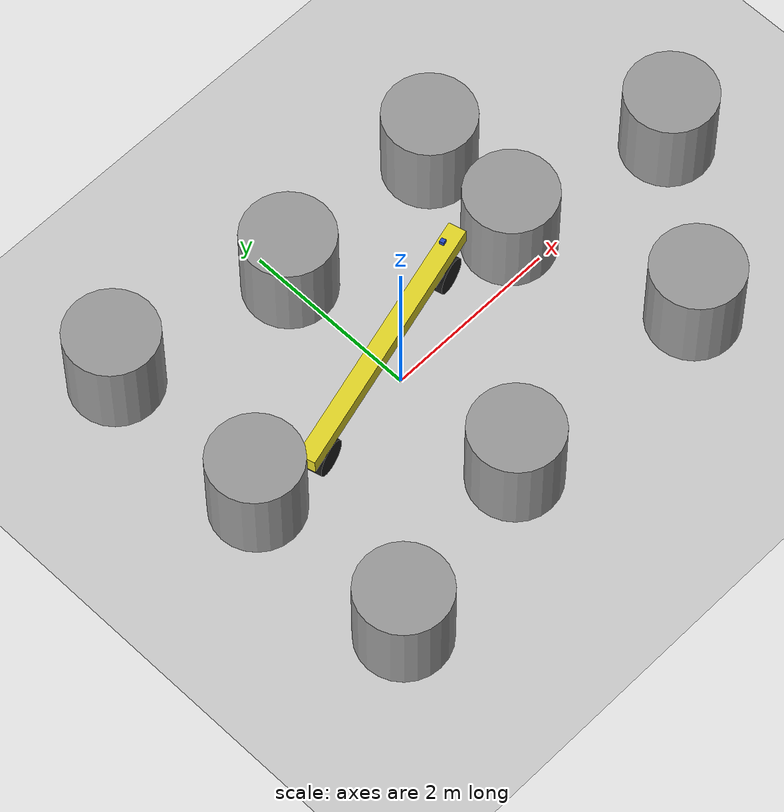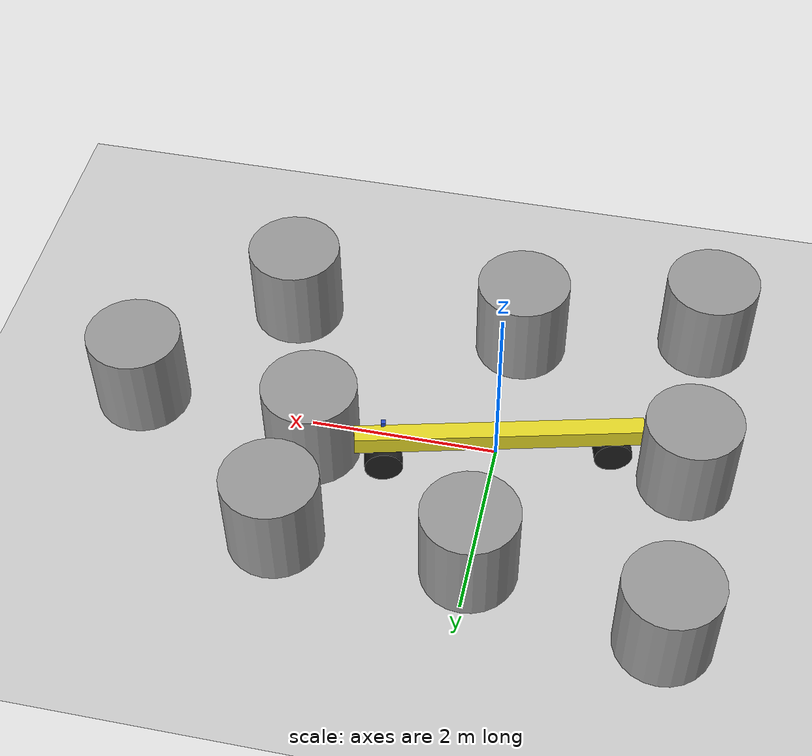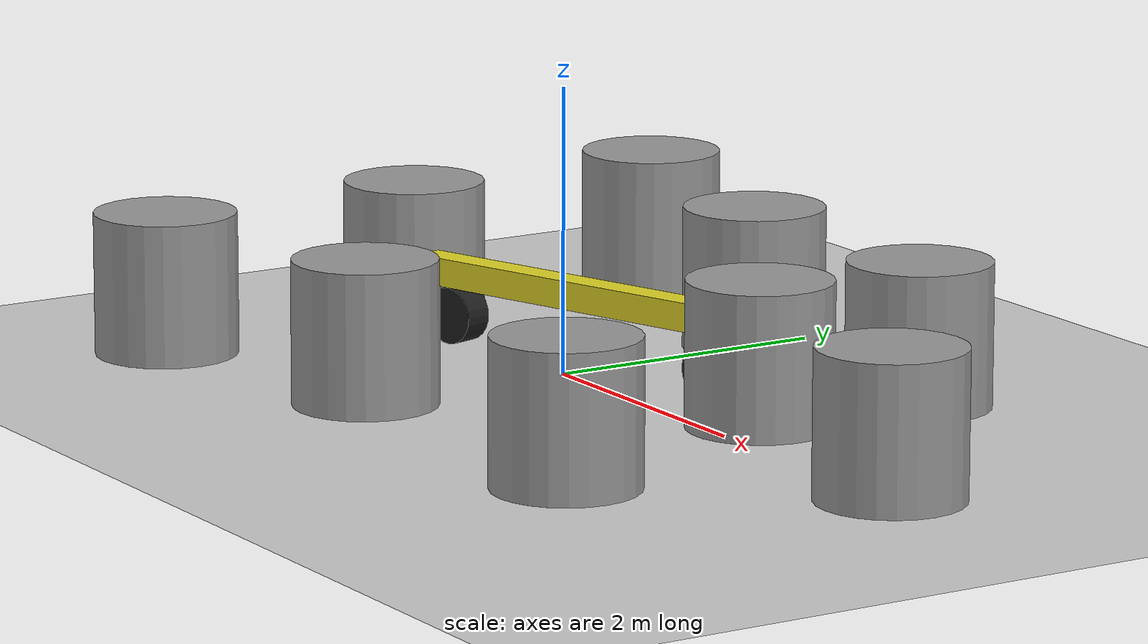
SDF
<sdf version="1.6">
 <world name="default">
  <light name="sun" type="directional">
   <pose>0 0 10 0 -0 0</pose>
   <diffuse>0.8 0.8 0.8 1</diffuse>
   <specular>0.2 0.2 0.2 1</specular>
   <attenuation>
    <range>1000</range>
    <constant>0.9</constant>
    <linear>0.01</linear>
    <quadratic>0.001</quadratic>
   </attenuation>
   <direction>-0.5 0.1 -0.9</direction>
  </light>
  <model name="ground_plane">
   <static>1</static>
   <link name="link">
    <collision name="collision">
     <geometry><plane><normal>0 0 1</normal><size>100 100</size></plane></geometry>
     <surface><friction><ode><mu>100</mu><mu2>50</mu2></ode></friction></surface>
    </collision>
    <visual name="visual">
     <cast_shadows>0</cast_shadows>
     <geometry><plane><normal>0 0 1</normal><size>100 100</size></plane></geometry>
     <material>
      <script><uri>file://media/materials/scripts/gazebo.material</uri><name>Gazebo/Grey</name></script>
     </material>
    </visual>
    <velocity_decay><linear>0</linear><angular>0</angular></velocity_decay>
   </link>
  </model>
  <physics name="default_physics" default="0" type="ode">
   <max_step_size>0.001</max_step_size>
   <real_time_factor>1</real_time_factor>
   <real_time_update_rate>1000</real_time_update_rate>
  </physics>
  <scene><ambient>0.4 0.4 0.4 1</ambient><background>0.7 0.7 0.7 1</background><shadows>1</shadows></scene>
  <spherical_coordinates>
   <surface_model>EARTH_WGS84</surface_model>
   <latitude_deg>0</latitude_deg>
   <longitude_deg>0</longitude_deg>
   <elevation>0</elevation>
   <heading_deg>0</heading_deg>
  </spherical_coordinates>
  <model name="unit_cylinder_1">
   <pose>-0 1.56701 0.499998 1e-06 -1e-06 0</pose>
   <link name="link">
    <inertial>
     <mass>1</mass>
     <inertia><ixx>1</ixx><ixy>0</ixy><ixz>0</ixz><iyy>1</iyy><iyz>0</iyz><izz>1</izz></inertia>
    </inertial>
    <collision name="collision">
     <geometry><cylinder><radius>0.5</radius><length>1</length></cylinder></geometry>
    </collision>
    <visual name="visual">
     <geometry><cylinder><radius>0.5</radius><length>1</length></cylinder></geometry>
     <material>
      <script><uri>file://media/materials/scripts/gazebo.material</uri><name>Gazebo/Grey</name></script>
     </material>
    </visual>
    <velocity_decay><linear>0</linear><angular>0</angular></velocity_decay>
   </link>
   <static>0</static>
  </model>
  <model name="unit_cylinder_2">
   <pose>2 1.55881 0.499992 -1e-06 1e-06 0</pose>
   <link name="link">
    <inertial>
     <mass>1</mass>
     <inertia><ixx>1</ixx><ixy>0</ixy><ixz>0</ixz><iyy>1</iyy><iyz>0</iyz><izz>1</izz></inertia>
    </inertial>
    <collision name="collision">
     <geometry><cylinder><radius>0.5</radius><length>1</length></cylinder></geometry>
    </collision>
    <visual name="visual">
     <geometry><cylinder><radius>0.5</radius><length>1</length></cylinder></geometry>
     <material>
      <script><uri>file://media/materials/scripts/gazebo.material</uri><name>Gazebo/Grey</name></script>
     </material>
    </visual>
    <velocity_decay><linear>0</linear><angular>0</angular></velocity_decay>
   </link>
   <static>0</static>
  </model>
  <model name="unit_cylinder_3">
   <pose>-0 -1.56452 0.499998 1e-06 -1e-06 0</pose>
   <link name="link">
    <inertial>
     <mass>1</mass>
     <inertia><ixx>1</ixx><ixy>0</ixy><ixz>0</ixz><iyy>1</iyy><iyz>0</iyz><izz>1</izz></inertia>
    </inertial>
    <collision name="collision">
     <geometry><cylinder><radius>0.5</radius><length>1</length></cylinder></geometry>
    </collision>
    <visual name="visual">
     <geometry><cylinder><radius>0.5</radius><length>1</length></cylinder></geometry>
     <material>
      <script><uri>file://media/materials/scripts/gazebo.material</uri><name>Gazebo/Grey</name></script>
     </material>
    </visual>
    <velocity_decay><linear>0</linear><angular>0</angular></velocity_decay>
   </link>
   <static>0</static>
  </model>
  <model name="unit_cylinder_4">
   <pose>2.56824 -1.58381 0.499992 -1e-06 1e-06 0</pose>
   <link name="link">
    <inertial>
     <mass>1</mass>
     <inertia><ixx>1</ixx><ixy>0</ixy><ixz>0</ixz><iyy>1</iyy><iyz>0</iyz><izz>1</izz></inertia>
    </inertial>
    <collision name="collision">
     <geometry><cylinder><radius>0.5</radius><length>1</length></cylinder></geometry>
    </collision>
    <visual name="visual">
     <geometry><cylinder><radius>0.5</radius><length>1</length></cylinder></geometry>
     <material>
      <script><uri>file://media/materials/scripts/gazebo.material</uri><name>Gazebo/Grey</name></script>
     </material>
    </visual>
    <velocity_decay><linear>0</linear><angular>0</angular></velocity_decay>
   </link>
   <static>0</static>
  </model>
  <model name="unit_cylinder_5">
   <pose>-2 0 0.499998 1e-06 -1e-06 0</pose>
   <link name="link">
    <inertial>
     <mass>1</mass>
     <inertia><ixx>1</ixx><ixy>0</ixy><ixz>0</ixz><iyy>1</iyy><iyz>0</iyz><izz>1</izz></inertia>
    </inertial>
    <collision name="collision">
     <geometry><cylinder><radius>0.5</radius><length>1</length></cylinder></geometry>
    </collision>
    <visual name="visual">
     <geometry><cylinder><radius>0.5</radius><length>1</length></cylinder></geometry>
     <material>
      <script><uri>file://media/materials/scripts/gazebo.material</uri><name>Gazebo/Grey</name></script>
     </material>
    </visual>
    <velocity_decay><linear>0</linear><angular>0</angular></velocity_decay>
   </link>
   <static>0</static>
  </model>
  <model name="unit_cylinder_6">
   <pose>1.90923 0.335929 0.500876 0.001504 0.000904 0.675776</pose>
   <link name="link">
    <inertial>
     <mass>1</mass>
     <inertia><ixx>1</ixx><ixy>0</ixy><ixz>0</ixz><iyy>1</iyy><iyz>0</iyz><izz>1</izz></inertia>
    </inertial>
    <collision name="collision">
     <geometry><cylinder><radius>0.5</radius><length>1</length></cylinder></geometry>
    </collision>
    <visual name="visual">
     <geometry><cylinder><radius>0.5</radius><length>1</length></cylinder></geometry>
     <material>
      <script><uri>file://media/materials/scripts/gazebo.material</uri><name>Gazebo/Grey</name></script>
     </material>
    </visual>
    <velocity_decay><linear>0</linear><angular>0</angular></velocity_decay>
   </link>
   <static>0</static>
  </model>
  <model name="unit_cylinder_7">
   <pose>3.89904 0 0.499998 -0 -0 -0</pose>
   <link name="link">
    <inertial>
     <mass>1</mass>
     <inertia><ixx>1</ixx><ixy>0</ixy><ixz>0</ixz><iyy>1</iyy><iyz>0</iyz><izz>1</izz></inertia>
    </inertial>
    <collision name="collision">
     <geometry><cylinder><radius>0.5</radius><length>1</length></cylinder></geometry>
    </collision>
    <visual name="visual">
     <geometry><cylinder><radius>0.5</radius><length>1</length></cylinder></geometry>
     <material>
      <script><uri>file://media/materials/scripts/gazebo.material</uri><name>Gazebo/Grey</name></script>
     </material>
    </visual>
    <velocity_decay><linear>0</linear><angular>0</angular></velocity_decay>
   </link>
   <static>0</static>
  </model>
  <model name="unit_cylinder_8">
   <pose>-2 2 0.499992 0 -0 0</pose>
   <link name="link">
    <inertial>
     <mass>1</mass>
     <inertia><ixx>1</ixx><ixy>0</ixy><ixz>0</ixz><iyy>1</iyy><iyz>0</iyz><izz>1</izz></inertia>
    </inertial>
    <collision name="collision">
     <geometry><cylinder><radius>0.5</radius><length>1</length></cylinder></geometry>
    </collision>
    <visual name="visual">
     <geometry><cylinder><radius>0.5</radius><length>1</length></cylinder></geometry>
     <material>
      <script><uri>file://media/materials/scripts/gazebo.material</uri><name>Gazebo/Grey</name></script>
     </material>
    </visual>
    <velocity_decay><linear>0</linear><angular>0</angular></velocity_decay>
   </link>
   <static>0</static>
  </model>
  <model name="unit_cylinder_9">
   <pose>-2 -2 0.499998 -0 -0 -0</pose>
   <link name="link">
    <inertial>
     <mass>1</mass>
     <inertia><ixx>1</ixx><ixy>0</ixy><ixz>0</ixz><iyy>1</iyy><iyz>0</iyz><izz>1</izz></inertia>
    </inertial>
    <collision name="collision">
     <geometry><cylinder><radius>0.5</radius><length>1</length></cylinder></geometry>
    </collision>
    <visual name="visual">
     <geometry><cylinder><radius>0.5</radius><length>1</length></cylinder></geometry>
     <material>
      <script><uri>file://media/materials/scripts/gazebo.material</uri><name>Gazebo/Grey</name></script>
     </material>
    </visual>
    <velocity_decay><linear>0</linear><angular>0</angular></velocity_decay>
   </link>
   <static>0</static>
  </model>
  <gravity>0 0 -9.8</gravity>
  <magnetic_field>6e-06 2.3e-05 -4.2e-05</magnetic_field>
  <atmosphere type="adiabatic"/>
  <audio><device>default</device></audio>
  <model name="bicycle_model">
   <link name="base_footprint">
    <inertial>
     <pose>0 0 0.497653 0 -0 0</pose>
     <mass>213</mass>
     <inertia><ixx>2.66213</ixx><ixy>0</ixy><ixz>0</ixz><iyy>160.949</iyy><iyz>0</iyz><izz>160.7</izz></inertia>
    </inertial>
    <collision name="base_footprint_fixed_joint_lump__base_link_collision">
     <pose>0 0 0.5 0 -0 0</pose>
     <geometry><box><size>1 0.1 0.1</size></box></geometry>
    </collision>
    <visual name="base_footprint_visual"><geometry><box><size>0.001 0.001 0.001</size></box></geometry></visual>
    <visual name="base_footprint_fixed_joint_lump__base_link_visual_1">
     <pose>0 0 0.5 0 -0 0</pose>
     <geometry><box><size>3 0.2 0.2</size></box></geometry>
     <material>
      <script><name>Gazebo/Yellow</name><uri>file://media/materials/scripts/gazebo.material</uri></script>
     </material>
    </visual>
    <visual name="base_footprint_fixed_joint_lump__hokuyo_link_visual_2">
     <pose>1.2 0 0.75 0 -0 0</pose>
     <geometry><box><size>0.05 0.05 0.05</size></box></geometry>
     <material>
      <script><name>Gazebo/Blue</name><uri>file://media/materials/scripts/gazebo.material</uri></script>
     </material>
    </visual>
    <sensor name="head_hokuyo_sensor" type="ray">
     <visualize>0</visualize>
     <update_rate>40</update_rate>
     <ray>
      <scan>
       <horizontal>
        <samples>720</samples>
        <resolution>1</resolution>
        <min_angle>-1.5708</min_angle>
        <max_angle>1.5708</max_angle>
       </horizontal>
       <vertical><samples>1</samples><min_angle>0</min_angle><max_angle>0</max_angle></vertical>
      </scan>
      <range><min>0.1</min><max>10</max><resolution>0.001</resolution></range>
     </ray>
     <plugin name="gazebo_ros_head_hokuyo_controller" filename="libgazebo_ros_laser.so">
      <topicName>/scan</topicName>
      <frameName>hokuyo_link</frameName>
      <robotNamespace>/</robotNamespace>
     </plugin>
     <pose>1.2 0 0.75 0 -0 0</pose>
    </sensor>
   </link>
   <link name="steering_rod">
    <pose>1.2 0 0.25 0 -0 0</pose>
    <inertial>
     <mass>1</mass>
     <inertia><ixx>0.0525</ixx><ixy>0</ixy><ixz>0</ixz><iyy>0.0525</iyy><iyz>0</iyz><izz>0.06</izz></inertia>
    </inertial>
    <collision name="steering_rod_collision">
     <pose>0 0 0 1.57 -0 0</pose>
     <geometry><cylinder><length>0.02</length><radius>0.02</radius></cylinder></geometry>
    </collision>
    <visual name="steering_rod_visual">
     <pose>0 0 0 1.57 -0 0</pose>
     <geometry><cylinder><length>0.02</length><radius>0.02</radius></cylinder></geometry>
    </visual>
   </link>
   <joint name="front_steer_joint" type="revolute">
    <child>steering_rod</child>
    <parent>base_footprint</parent>
    <axis>
     <xyz>0 0 1</xyz>
     <limit><lower>-1e+16</lower><upper>1e+16</upper></limit>
     <dynamics><spring_reference>0</spring_reference><spring_stiffness>0</spring_stiffness></dynamics>
     <use_parent_model_frame>1</use_parent_model_frame>
    </axis>
   </joint>
   <link name="front_wheel">
    <pose>1.2 0 0.15 0 -0 0</pose>
    <inertial>
     <mass>3</mass>
     <inertia><ixx>0.0525</ixx><ixy>0</ixy><ixz>0</ixz><iyy>0.0525</iyy><iyz>0</iyz><izz>0.06</izz></inertia>
    </inertial>
    <collision name="front_wheel_collision">
     <pose>0 0 0 1.57 -0 0</pose>
     <geometry><cylinder><length>0.2</length><radius>0.2</radius></cylinder></geometry>
     <surface>
      <contact><ode><kp>1e+07</kp><kd>1</kd></ode></contact>
      <friction><ode><mu>0.2</mu><mu2>0.2</mu2><fdir1>1 0 0</fdir1></ode></friction>
     </surface>
    </collision>
    <visual name="front_wheel_visual">
     <pose>0 0 0 1.57 -0 0</pose>
     <geometry><cylinder><length>0.2</length><radius>0.2</radius></cylinder></geometry>
     <material>
      <script><name>Gazebo/Black</name><uri>file://media/materials/scripts/gazebo.material</uri></script>
     </material>
    </visual>
   </link>
   <joint name="front_wheel_joint" type="revolute">
    <child>front_wheel</child>
    <parent>steering_rod</parent>
    <axis>
     <xyz>0 1 0</xyz>
     <limit><lower>-1e+16</lower><upper>1e+16</upper></limit>
     <dynamics><spring_reference>0</spring_reference><spring_stiffness>0</spring_stiffness></dynamics>
     <use_parent_model_frame>1</use_parent_model_frame>
    </axis>
   </joint>
   <link name="rear_wheel">
    <pose>-1.2 0 0.2 0 -0 0</pose>
    <inertial>
     <mass>3</mass>
     <inertia><ixx>0.0525</ixx><ixy>0</ixy><ixz>0</ixz><iyy>0.0525</iyy><iyz>0</iyz><izz>0.06</izz></inertia>
    </inertial>
    <collision name="rear_wheel_collision">
     <pose>0 0 0 1.57 -0 0</pose>
     <geometry><cylinder><length>0.2</length><radius>0.2</radius></cylinder></geometry>
     <surface>
      <contact><ode><kp>1e+07</kp><kd>1</kd></ode></contact>
      <friction><ode><mu>0.2</mu><mu2>0.2</mu2><fdir1>1 0 0</fdir1></ode></friction>
     </surface>
    </collision>
    <visual name="rear_wheel_visual">
     <pose>0 0 0 1.57 -0 0</pose>
     <geometry><cylinder><length>0.2</length><radius>0.2</radius></cylinder></geometry>
     <material>
      <script><name>Gazebo/Black</name><uri>file://media/materials/scripts/gazebo.material</uri></script>
     </material>
    </visual>
   </link>
   <joint name="rear_wheel_joint" type="revolute">
    <child>rear_wheel</child>
    <parent>base_footprint</parent>
    <axis>
     <xyz>0 1 0</xyz>
     <limit><lower>-1e+16</lower><upper>1e+16</upper></limit>
     <dynamics><spring_reference>0</spring_reference><spring_stiffness>0</spring_stiffness></dynamics>
     <use_parent_model_frame>1</use_parent_model_frame>
    </axis>
   </joint>
   <plugin name="gazebo_ros_control" filename="libgazebo_ros_control.so">
    <robotNamespace>/bicycle_model</robotNamespace>
    <robotSimType>gazebo_ros_control/DefaultRobotHWSim</robotSimType>
   </plugin>
   <static>0</static>
   <plugin name="ackermann_steering_controller" filename="libackermann_steering_controller.so">
    <robotNamespace>/</robotNamespace>
   </plugin>
   <pose>-0.047275 0.195383 0.024745 0.001133 -0.020827 0.257842</pose>
  </model>
 </world>
</sdf>
